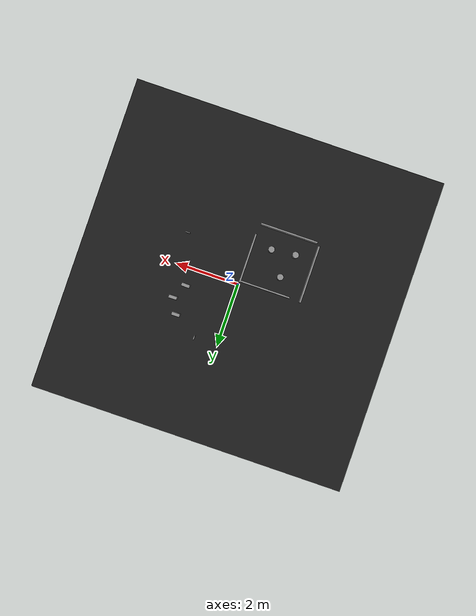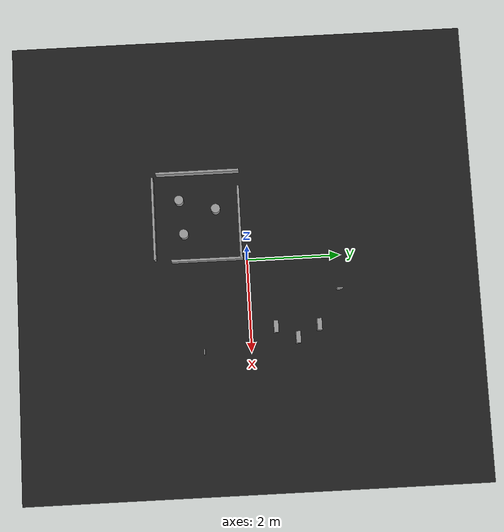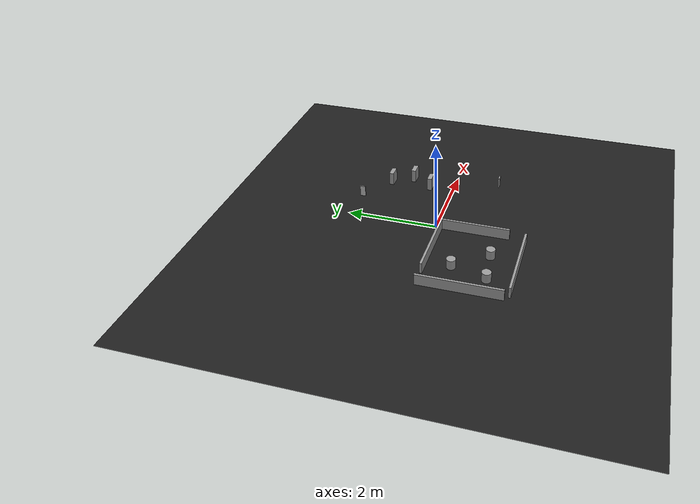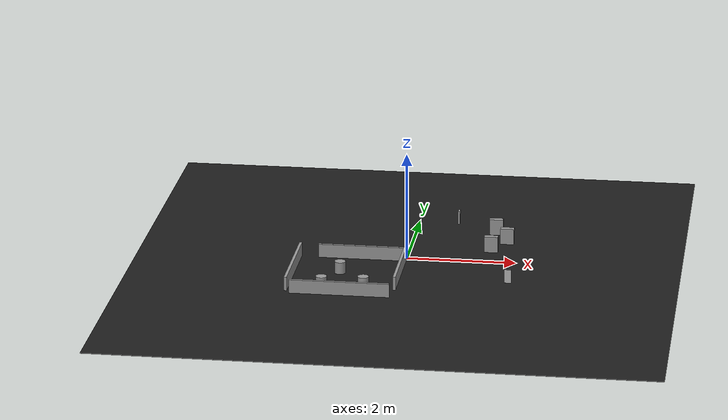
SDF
<sdf version="1.6">
 <world name="default">
  <scene>
   <ambient>0 0 0 1</ambient>
   <shadows>0</shadows>
   <grid>0</grid>
   <background>0.7 0.7 0.7 1</background>
  </scene>
  <include>
   <uri>model://turtlebot3_autorace_2020/traffic_children</uri>
   <pose>0.74 1.95 0.13 0 0 -1.57</pose>
  </include>
  <include>
   <uri>model://turtlebot3_autorace_2020/traffic_ped_crs</uri>
   <pose>1.95 -1.0 0.125 0 -0 0.0</pose>
  </include>
  <light name="sun" type="directional">
   <pose>0 0 10 0 -0 0</pose>
   <diffuse>0.8 0.8 0.8 1</diffuse>
   <specular>0.1 0.1 0.1 1</specular>
   <attenuation>
    <range>1000</range>
    <constant>0.9</constant>
    <linear>0.01</linear>
    <quadratic>0.001</quadratic>
   </attenuation>
   <direction>-0.5 0.5 -1</direction>
  </light>
  <model name="ground2">
   <pose>0 0 -0.1 0 -0 0</pose>
   <static>1</static>
   <link name="ground">
    <collision name="ground_coll"><geometry><box><size>8 8 0.01</size></box></geometry></collision>
    <visual name="ground_vis">
     <geometry><box><size>10 10 0.01</size></box></geometry>
     <material>
      <script><uri>file://media/materials/scripts/gazebo.material</uri><name>Gazebo/FlatBlack</name></script>
     </material>
    </visual>
   </link>
  </model>
  <gravity>0 0 -9.8</gravity>
  <magnetic_field>6e-06 2.3e-05 -4.2e-05</magnetic_field>
  <atmosphere type="adiabatic"/>
  <physics name="default_physics" default="0" type="ode">
   <max_step_size>0.001</max_step_size>
   <real_time_factor>1</real_time_factor>
   <real_time_update_rate>1000</real_time_update_rate>
  </physics>
  <spherical_coordinates>
   <surface_model>EARTH_WGS84</surface_model>
   <latitude_deg>0</latitude_deg>
   <longitude_deg>0</longitude_deg>
   <elevation>0</elevation>
   <heading_deg>0</heading_deg>
  </spherical_coordinates>
  <light name="user_point_light_1" type="point">
   <pose>-1.648146 0.604519 1 0 -0 0</pose>
   <diffuse>0.5 0.5 0.5 1</diffuse>
   <specular>0.1 0.1 0.1 1</specular>
   <attenuation>
    <range>20</range>
    <constant>0.5</constant>
    <linear>0.01</linear>
    <quadratic>0.001</quadratic>
   </attenuation>
   <cast_shadows>0</cast_shadows>
   <direction>0 0 -1</direction>
  </light>
  <light name="user_point_light_2" type="point">
   <pose>1.63854 1.69565 1 0 -0 0</pose>
   <diffuse>0.5 0.5 0.5 1</diffuse>
   <specular>0.1 0.1 0.1 1</specular>
   <attenuation>
    <range>20</range>
    <constant>0.5</constant>
    <linear>0.01</linear>
    <quadratic>0.001</quadratic>
   </attenuation>
   <cast_shadows>0</cast_shadows>
   <direction>0 0 -1</direction>
  </light>
  <light name="user_point_light_3" type="point">
   <pose>0.42  -3.31 1 0 -0 0</pose>
   <diffuse>0.5 0.5 0.5 1</diffuse>
   <specular>0.1 0.1 0.1 1</specular>
   <attenuation>
    <range>20</range>
    <constant>0.5</constant>
    <linear>0.01</linear>
    <quadratic>0.001</quadratic>
   </attenuation>
   <cast_shadows>0</cast_shadows>
   <direction>0 0 -1</direction>
  </light>
  <model name="tunnel_wall">
   <link name="Wall_1">
    <pose>-0.980783 0.049883 0 0 -0 1.5708</pose>
    <visual name="Wall_1_Visual">
     <pose>0 0 0.125 0 -0 0</pose>
     <geometry><box><size>1.8 0.05 0.25</size></box></geometry>
     <material>
      <script><uri>file://media/materials/scripts/gazebo.material</uri><name>Gazebo/Grey</name></script>
      <ambient>1 1 1 1</ambient>
      <diffuse>0.7 0.7 0.7 1</diffuse>
      <specular>0.01 0.01 0.01 1</specular>
      <emissive>0 0 0 1</emissive>
     </material>
    </visual>
    <collision name="Wall_1_Collision">
     <pose>0 0 0.125 0 -0 0</pose>
     <geometry><box><size>1.8 0.05 0.25</size></box></geometry>
     <surface>
      <friction>
       <ode><mu>1</mu><mu2>1</mu2><fdir1>0 0 0</fdir1><slip1>0</slip1><slip2>0</slip2></ode>
       <torsional>
        <coefficient>1</coefficient>
        <patch_radius>0</patch_radius>
        <surface_radius>0</surface_radius>
        <use_patch_radius>1</use_patch_radius>
        <ode><slip>0</slip></ode>
       </torsional>
      </friction>
      <bounce><restitution_coefficient>0</restitution_coefficient><threshold>1e+06</threshold></bounce>
      <contact>
       <collide_without_contact>0</collide_without_contact>
       <collide_without_contact_bitmask>1</collide_without_contact_bitmask>
       <collide_bitmask>1</collide_bitmask>
       <ode>
        <soft_cfm>0</soft_cfm>
        <soft_erp>0.2</soft_erp>
        <kp>1e+13</kp>
        <kd>1</kd>
        <max_vel>0.01</max_vel>
        <min_depth>0</min_depth>
       </ode>
       <bullet>
        <split_impulse>1</split_impulse>
        <split_impulse_penetration_threshold>-0.01</split_impulse_penetration_threshold>
        <soft_cfm>0</soft_cfm>
        <soft_erp>0.2</soft_erp>
        <kp>1e+13</kp>
        <kd>1</kd>
       </bullet>
      </contact>
     </surface>
    </collision>
   </link>
   <link name="Wall_2">
    <pose>0 -0.935438 0 0 -0 0</pose>
    <visual name="Wall_2_Visual">
     <pose>0 0 0.125 0 -0 0</pose>
     <geometry><box><size>1.8 0.05 0.25</size></box></geometry>
     <material>
      <script><uri>file://media/materials/scripts/gazebo.material</uri><name>Gazebo/Grey</name></script>
      <ambient>1 1 1 1</ambient>
      <diffuse>0.7 0.7 0.7 1</diffuse>
      <specular>0.01 0.01 0.01 1</specular>
      <emissive>0 0 0 1</emissive>
     </material>
    </visual>
    <collision name="Wall_2_Collision">
     <pose>0 0 0.125 0 -0 0</pose>
     <geometry><box><size>1.8 0.05 0.25</size></box></geometry>
     <surface>
      <friction>
       <ode><mu>1</mu><mu2>1</mu2><fdir1>0 0 0</fdir1><slip1>0</slip1><slip2>0</slip2></ode>
       <torsional>
        <coefficient>1</coefficient>
        <patch_radius>0</patch_radius>
        <surface_radius>0</surface_radius>
        <use_patch_radius>1</use_patch_radius>
        <ode><slip>0</slip></ode>
       </torsional>
      </friction>
      <bounce><restitution_coefficient>0</restitution_coefficient><threshold>1e+06</threshold></bounce>
      <contact>
       <collide_without_contact>0</collide_without_contact>
       <collide_without_contact_bitmask>1</collide_without_contact_bitmask>
       <collide_bitmask>1</collide_bitmask>
       <ode>
        <soft_cfm>0</soft_cfm>
        <soft_erp>0.2</soft_erp>
        <kp>1e+13</kp>
        <kd>1</kd>
        <max_vel>0.01</max_vel>
        <min_depth>0</min_depth>
       </ode>
       <bullet>
        <split_impulse>1</split_impulse>
        <split_impulse_penetration_threshold>-0.01</split_impulse_penetration_threshold>
        <soft_cfm>0</soft_cfm>
        <soft_erp>0.2</soft_erp>
        <kp>1e+13</kp>
        <kd>1</kd>
       </bullet>
      </contact>
     </surface>
    </collision>
   </link>
   <link name="Wall_3">
    <pose>0.943396 0.183669 0 0 -0 1.5708</pose>
    <inertial>
     <inertia><ixx>nan</ixx><ixy>0</ixy><ixz>0</ixz><iyy>nan</iyy><iyz>0</iyz><izz>nan</izz></inertia>
     <mass>0</mass>
    </inertial>
    <visual name="Wall_3_Visual">
     <pose>0 0 0.125 0 -0 0</pose>
     <geometry><box><size>1.53699 0.05 0.25</size></box></geometry>
     <material>
      <script><uri>file://media/materials/scripts/gazebo.material</uri><name>Gazebo/Grey</name></script>
      <ambient>1 1 1 1</ambient>
      <diffuse>0.7 0.7 0.7 1</diffuse>
      <specular>0.01 0.01 0.01 1</specular>
      <emissive>0 0 0 1</emissive>
     </material>
    </visual>
    <collision name="Wall_3_Collision">
     <pose>0 0 0.125 0 -0 0</pose>
     <geometry><box><size>1.53699 0.05 0.25</size></box></geometry>
     <surface>
      <friction>
       <ode><mu>1</mu><mu2>1</mu2><fdir1>0 0 0</fdir1><slip1>0</slip1><slip2>0</slip2></ode>
       <torsional>
        <coefficient>1</coefficient>
        <patch_radius>0</patch_radius>
        <surface_radius>0</surface_radius>
        <use_patch_radius>1</use_patch_radius>
        <ode><slip>0</slip></ode>
       </torsional>
      </friction>
      <bounce><restitution_coefficient>0</restitution_coefficient><threshold>1e+06</threshold></bounce>
      <contact>
       <collide_without_contact>0</collide_without_contact>
       <collide_without_contact_bitmask>1</collide_without_contact_bitmask>
       <collide_bitmask>1</collide_bitmask>
       <ode>
        <soft_cfm>0</soft_cfm>
        <soft_erp>0.2</soft_erp>
        <kp>1e+13</kp>
        <kd>1</kd>
        <max_vel>0.01</max_vel>
        <min_depth>0</min_depth>
       </ode>
       <bullet>
        <split_impulse>1</split_impulse>
        <split_impulse_penetration_threshold>-0.01</split_impulse_penetration_threshold>
        <soft_cfm>0</soft_cfm>
        <soft_erp>0.2</soft_erp>
        <kp>1e+13</kp>
        <kd>1</kd>
       </bullet>
      </contact>
     </surface>
    </collision>
   </link>
   <link name="Wall_4">
    <pose>0.15 0.915 0 0 -0 3.14159</pose>
    <visual name="Wall_4_Visual">
     <pose>0 0 0.125 0 -0 0</pose>
     <geometry><box><size>1.58 0.05 0.25</size></box></geometry>
     <material>
      <script><uri>file://media/materials/scripts/gazebo.material</uri><name>Gazebo/Grey</name></script>
      <ambient>1 1 1 1</ambient>
      <diffuse>0.7 0.7 0.7 1</diffuse>
      <specular>0.01 0.01 0.01 1</specular>
      <emissive>0 0 0 1</emissive>
     </material>
    </visual>
    <collision name="Wall_4_Collision">
     <pose>0 0 0.125 0 -0 0</pose>
     <geometry><box><size>1.58 0.05 0.25</size></box></geometry>
     <surface>
      <friction>
       <ode><mu>1</mu><mu2>1</mu2><fdir1>0 0 0</fdir1><slip1>0</slip1><slip2>0</slip2></ode>
       <torsional>
        <coefficient>1</coefficient>
        <patch_radius>0</patch_radius>
        <surface_radius>0</surface_radius>
        <use_patch_radius>1</use_patch_radius>
        <ode><slip>0</slip></ode>
       </torsional>
      </friction>
      <bounce><restitution_coefficient>0</restitution_coefficient><threshold>1e+06</threshold></bounce>
      <contact>
       <collide_without_contact>0</collide_without_contact>
       <collide_without_contact_bitmask>1</collide_without_contact_bitmask>
       <collide_bitmask>1</collide_bitmask>
       <ode>
        <soft_cfm>0</soft_cfm>
        <soft_erp>0.2</soft_erp>
        <kp>1e+13</kp>
        <kd>1</kd>
        <max_vel>0.01</max_vel>
        <min_depth>0</min_depth>
       </ode>
       <bullet>
        <split_impulse>1</split_impulse>
        <split_impulse_penetration_threshold>-0.01</split_impulse_penetration_threshold>
        <soft_cfm>0</soft_cfm>
        <soft_erp>0.2</soft_erp>
        <kp>1e+13</kp>
        <kd>1</kd>
       </bullet>
      </contact>
     </surface>
    </collision>
   </link>
   <static>1</static>
   <pose>-0.964699 -1.03574 0 0 -0 0</pose>
  </model>
  <model name="tunnel_obstacle">
   <link name="obstacle_1">
    <pose>0.42322 -0.212034 0.0 0 -0 0</pose>
    <inertial>
     <mass>0.0416663</mass>
     <inertia>
      <ixx>0.00098188</ixx>
      <ixy>0</ixy>
      <ixz>0</ixz>
      <iyy>0.00098188</iyy>
      <iyz>0</iyz>
      <izz>0.00046751</izz>
     </inertia>
    </inertial>
    <visual name="visual">
     <geometry><cylinder><radius>0.1</radius><length>0.25</length></cylinder></geometry>
     <material>
      <lighting>1</lighting>
      <script><uri>file://media/materials/scripts/gazebo.material</uri><name>Gazebo/Grey</name></script>
      <ambient>0.3 0.3 0.3 1</ambient>
      <diffuse>0.7 0.7 0.7 1</diffuse>
      <specular>0.01 0.01 0.01 1</specular>
      <emissive>0 0 0 1</emissive>
      <shader type="pixel"><normal_map>__default__</normal_map></shader>
     </material>
    </visual>
    <collision name="collision">
     <geometry><cylinder><radius>0.1</radius><length>0.46418</length></cylinder></geometry>
     <surface>
      <friction>
       <ode><mu>1</mu><mu2>1</mu2><fdir1>0 0 0</fdir1><slip1>0</slip1><slip2>0</slip2></ode>
       <torsional>
        <coefficient>1</coefficient>
        <patch_radius>0</patch_radius>
        <surface_radius>0</surface_radius>
        <use_patch_radius>1</use_patch_radius>
        <ode><slip>0</slip></ode>
       </torsional>
      </friction>
      <bounce><restitution_coefficient>0</restitution_coefficient><threshold>1e+06</threshold></bounce>
      <contact>
       <collide_without_contact>0</collide_without_contact>
       <collide_without_contact_bitmask>1</collide_without_contact_bitmask>
       <collide_bitmask>1</collide_bitmask>
       <ode>
        <soft_cfm>0</soft_cfm>
        <soft_erp>0.2</soft_erp>
        <kp>1e+13</kp>
        <kd>1</kd>
        <max_vel>0.01</max_vel>
        <min_depth>0</min_depth>
       </ode>
       <bullet>
        <split_impulse>1</split_impulse>
        <split_impulse_penetration_threshold>-0.01</split_impulse_penetration_threshold>
        <soft_cfm>0</soft_cfm>
        <soft_erp>0.2</soft_erp>
        <kp>1e+13</kp>
        <kd>1</kd>
       </bullet>
      </contact>
     </surface>
    </collision>
   </link>
   <link name="obstacle_2">
    <pose>-0.323729 -0.287563 0.0 0 -0 0</pose>
    <inertial>
     <mass>0.0416663</mass>
     <inertia>
      <ixx>0.00098188</ixx>
      <ixy>0</ixy>
      <ixz>0</ixz>
      <iyy>0.00098188</iyy>
      <iyz>0</iyz>
      <izz>0.00046751</izz>
     </inertia>
    </inertial>
    <visual name="visual">
     <geometry><cylinder><radius>0.1</radius><length>0.25</length></cylinder></geometry>
     <material>
      <lighting>1</lighting>
      <script><uri>file://media/materials/scripts/gazebo.material</uri><name>Gazebo/Grey</name></script>
      <ambient>0.3 0.3 0.3 1</ambient>
      <diffuse>0.7 0.7 0.7 1</diffuse>
      <specular>0.01 0.01 0.01 1</specular>
      <emissive>0 0 0 1</emissive>
      <shader type="pixel"><normal_map>__default__</normal_map></shader>
     </material>
    </visual>
    <collision name="collision">
     <geometry><cylinder><radius>0.1</radius><length>0.46418</length></cylinder></geometry>
     <surface>
      <friction>
       <ode><mu>1</mu><mu2>1</mu2><fdir1>0 0 0</fdir1><slip1>0</slip1><slip2>0</slip2></ode>
       <torsional>
        <coefficient>1</coefficient>
        <patch_radius>0</patch_radius>
        <surface_radius>0</surface_radius>
        <use_patch_radius>1</use_patch_radius>
        <ode><slip>0</slip></ode>
       </torsional>
      </friction>
      <bounce><restitution_coefficient>0</restitution_coefficient><threshold>1e+06</threshold></bounce>
      <contact>
       <collide_without_contact>0</collide_without_contact>
       <collide_without_contact_bitmask>1</collide_without_contact_bitmask>
       <collide_bitmask>1</collide_bitmask>
       <ode>
        <soft_cfm>0</soft_cfm>
        <soft_erp>0.2</soft_erp>
        <kp>1e+13</kp>
        <kd>1</kd>
        <max_vel>0.01</max_vel>
        <min_depth>0</min_depth>
       </ode>
       <bullet>
        <split_impulse>1</split_impulse>
        <split_impulse_penetration_threshold>-0.01</split_impulse_penetration_threshold>
        <soft_cfm>0</soft_cfm>
        <soft_erp>0.2</soft_erp>
        <kp>1e+13</kp>
        <kd>1</kd>
       </bullet>
      </contact>
     </surface>
    </collision>
   </link>
   <link name="obstacle_3">
    <pose>-0.099492 0.499594 0.0 0 -0 0</pose>
    <inertial>
     <mass>0.0416663</mass>
     <inertia>
      <ixx>0.00098188</ixx>
      <ixy>0</ixy>
      <ixz>0</ixz>
      <iyy>0.00098188</iyy>
      <iyz>0</iyz>
      <izz>0.00046751</izz>
     </inertia>
    </inertial>
    <visual name="visual">
     <geometry><cylinder><radius>0.1</radius><length>0.25</length></cylinder></geometry>
     <material>
      <lighting>1</lighting>
      <script><uri>file://media/materials/scripts/gazebo.material</uri><name>Gazebo/Grey</name></script>
      <ambient>0.3 0.3 0.3 1</ambient>
      <diffuse>0.7 0.7 0.7 1</diffuse>
      <specular>0.01 0.01 0.01 1</specular>
      <emissive>0 0 0 1</emissive>
      <shader type="pixel"><normal_map>__default__</normal_map></shader>
     </material>
    </visual>
    <collision name="collision">
     <geometry><cylinder><radius>0.1</radius><length>0.46418</length></cylinder></geometry>
     <surface>
      <friction>
       <ode><mu>1</mu><mu2>1</mu2><fdir1>0 0 0</fdir1><slip1>0</slip1><slip2>0</slip2></ode>
       <torsional>
        <coefficient>1</coefficient>
        <patch_radius>0</patch_radius>
        <surface_radius>0</surface_radius>
        <use_patch_radius>1</use_patch_radius>
        <ode><slip>0</slip></ode>
       </torsional>
      </friction>
      <bounce><restitution_coefficient>0</restitution_coefficient><threshold>1e+06</threshold></bounce>
      <contact>
       <collide_without_contact>0</collide_without_contact>
       <collide_without_contact_bitmask>1</collide_without_contact_bitmask>
       <collide_bitmask>1</collide_bitmask>
       <ode>
        <soft_cfm>0</soft_cfm>
        <soft_erp>0.2</soft_erp>
        <kp>1e+13</kp>
        <kd>1</kd>
        <max_vel>0.01</max_vel>
        <min_depth>0</min_depth>
       </ode>
       <bullet>
        <split_impulse>1</split_impulse>
        <split_impulse_penetration_threshold>-0.01</split_impulse_penetration_threshold>
        <soft_cfm>0</soft_cfm>
        <soft_erp>0.2</soft_erp>
        <kp>1e+13</kp>
        <kd>1</kd>
       </bullet>
      </contact>
     </surface>
    </collision>
   </link>
   <static>1</static>
   <pose>-1.04145 -1.12671 0 0 -0 0</pose>
  </model>
  <model name="barrier_1">
   <link name="link">
    <inertial>
     <mass>1</mass>
     <inertia>
      <ixx>0.166667</ixx>
      <ixy>0</ixy>
      <ixz>0</ixz>
      <iyy>0.166667</iyy>
      <iyz>0</iyz>
      <izz>0.166667</izz>
     </inertia>
    </inertial>
    <visual name="visual">
     <geometry><box><size>0.25 0.1 0.3</size></box></geometry>
     <material>
      <script><name>Gazebo/Grey</name><uri>file://media/materials/scripts/gazebo.material</uri></script>
      <shader type="pixel"><normal_map>__default__</normal_map></shader>
      <ambient>0.3 0.3 0.3 1</ambient>
      <diffuse>0.7 0.7 0.7 1</diffuse>
      <specular>0.01 0.01 0.01 1</specular>
      <emissive>0 0 0 1</emissive>
     </material>
    </visual>
    <collision name="collision">
     <geometry><box><size>0.25 0.1 0.3</size></box></geometry>
     <surface>
      <friction>
       <ode><mu>1</mu><mu2>1</mu2><fdir1>0 0 0</fdir1><slip1>0</slip1><slip2>0</slip2></ode>
       <torsional>
        <coefficient>1</coefficient>
        <patch_radius>0</patch_radius>
        <surface_radius>0</surface_radius>
        <use_patch_radius>1</use_patch_radius>
        <ode><slip>0</slip></ode>
       </torsional>
      </friction>
      <bounce><restitution_coefficient>0</restitution_coefficient><threshold>1e+06</threshold></bounce>
      <contact>
       <collide_without_contact>0</collide_without_contact>
       <collide_without_contact_bitmask>1</collide_without_contact_bitmask>
       <collide_bitmask>1</collide_bitmask>
       <ode>
        <soft_cfm>0</soft_cfm>
        <soft_erp>0.2</soft_erp>
        <kp>1e+13</kp>
        <kd>1</kd>
        <max_vel>0.01</max_vel>
        <min_depth>0</min_depth>
       </ode>
       <bullet>
        <split_impulse>1</split_impulse>
        <split_impulse_penetration_threshold>-0.01</split_impulse_penetration_threshold>
        <soft_cfm>0</soft_cfm>
        <soft_erp>0.2</soft_erp>
        <kp>1e+13</kp>
        <kd>1</kd>
       </bullet>
      </contact>
     </surface>
    </collision>
   </link>
   <static>0</static>
   <pose>1.49 0.54 0.15 0 -0 0</pose>
  </model>
  <model name="barrier_2">
   <link name="link">
    <inertial>
     <mass>1</mass>
     <inertia>
      <ixx>0.166667</ixx>
      <ixy>0</ixy>
      <ixz>0</ixz>
      <iyy>0.166667</iyy>
      <iyz>0</iyz>
      <izz>0.166667</izz>
     </inertia>
    </inertial>
    <visual name="visual">
     <geometry><box><size>0.25 0.1 0.3</size></box></geometry>
     <material>
      <script><name>Gazebo/Grey</name><uri>file://media/materials/scripts/gazebo.material</uri></script>
      <shader type="pixel"><normal_map>__default__</normal_map></shader>
      <ambient>0.3 0.3 0.3 1</ambient>
      <diffuse>0.7 0.7 0.7 1</diffuse>
      <specular>0.01 0.01 0.01 1</specular>
      <emissive>0 0 0 1</emissive>
     </material>
    </visual>
    <collision name="collision">
     <geometry><box><size>0.25 0.1 0.3</size></box></geometry>
     <surface>
      <friction>
       <ode><mu>1</mu><mu2>1</mu2><fdir1>0 0 0</fdir1><slip1>0</slip1><slip2>0</slip2></ode>
       <torsional>
        <coefficient>1</coefficient>
        <patch_radius>0</patch_radius>
        <surface_radius>0</surface_radius>
        <use_patch_radius>1</use_patch_radius>
        <ode><slip>0</slip></ode>
       </torsional>
      </friction>
      <bounce><restitution_coefficient>0</restitution_coefficient><threshold>1e+06</threshold></bounce>
      <contact>
       <collide_without_contact>0</collide_without_contact>
       <collide_without_contact_bitmask>1</collide_without_contact_bitmask>
       <collide_bitmask>1</collide_bitmask>
       <ode>
        <soft_cfm>0</soft_cfm>
        <soft_erp>0.2</soft_erp>
        <kp>1e+13</kp>
        <kd>1</kd>
        <max_vel>0.01</max_vel>
        <min_depth>0</min_depth>
       </ode>
       <bullet>
        <split_impulse>1</split_impulse>
        <split_impulse_penetration_threshold>-0.01</split_impulse_penetration_threshold>
        <soft_cfm>0</soft_cfm>
        <soft_erp>0.2</soft_erp>
        <kp>1e+13</kp>
        <kd>1</kd>
       </bullet>
      </contact>
     </surface>
    </collision>
   </link>
   <static>0</static>
   <pose>1.74 1 0.15 0 -0 0</pose>
  </model>
  <model name="barrier_3">
   <link name="link">
    <inertial>
     <mass>1</mass>
     <inertia>
      <ixx>0.166667</ixx>
      <ixy>0</ixy>
      <ixz>0</ixz>
      <iyy>0.166667</iyy>
      <iyz>0</iyz>
      <izz>0.166667</izz>
     </inertia>
    </inertial>
    <visual name="visual">
     <geometry><box><size>0.25 0.1 0.3</size></box></geometry>
     <material>
      <script><name>Gazebo/Grey</name><uri>file://media/materials/scripts/gazebo.material</uri></script>
      <shader type="pixel"><normal_map>__default__</normal_map></shader>
      <ambient>0.3 0.3 0.3 1</ambient>
      <diffuse>0.7 0.7 0.7 1</diffuse>
      <specular>0.01 0.01 0.01 1</specular>
      <emissive>0 0 0 1</emissive>
     </material>
    </visual>
    <collision name="collision">
     <geometry><box><size>0.25 0.1 0.3</size></box></geometry>
     <surface>
      <friction>
       <ode><mu>1</mu><mu2>1</mu2><fdir1>0 0 0</fdir1><slip1>0</slip1><slip2>0</slip2></ode>
       <torsional>
        <coefficient>1</coefficient>
        <patch_radius>0</patch_radius>
        <surface_radius>0</surface_radius>
        <use_patch_radius>1</use_patch_radius>
        <ode><slip>0</slip></ode>
       </torsional>
      </friction>
      <bounce><restitution_coefficient>0</restitution_coefficient><threshold>1e+06</threshold></bounce>
      <contact>
       <collide_without_contact>0</collide_without_contact>
       <collide_without_contact_bitmask>1</collide_without_contact_bitmask>
       <collide_bitmask>1</collide_bitmask>
       <ode>
        <soft_cfm>0</soft_cfm>
        <soft_erp>0.2</soft_erp>
        <kp>1e+13</kp>
        <kd>1</kd>
        <max_vel>0.01</max_vel>
        <min_depth>0</min_depth>
       </ode>
       <bullet>
        <split_impulse>1</split_impulse>
        <split_impulse_penetration_threshold>-0.01</split_impulse_penetration_threshold>
        <soft_cfm>0</soft_cfm>
        <soft_erp>0.2</soft_erp>
        <kp>1e+13</kp>
        <kd>1</kd>
       </bullet>
      </contact>
     </surface>
    </collision>
   </link>
   <static>0</static>
   <pose>1.49 1.464 0.15 0 -0 0</pose>
  </model>
 </world>
</sdf>

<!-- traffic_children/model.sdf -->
<sdf version="1.6">
  <model name="traffic_children">
    <static>true</static>
    <link name="box">
      <pose>0 0 0 0 0 0</pose>
      <collision name="collision">
        <geometry>
          <box>
            <size>0.12 0.025 0.25</size>
          </box>
        </geometry>
      </collision>
      <visual name="visual">
        <geometry>
          <box>
            <size>0.12 0.025 0.25</size>
          </box>
        </geometry>
        <material>
          <script>
            <uri>model://turtlebot3_autorace_2020/traffic_children/materials/scripts</uri>
            <uri>model://turtlebot3_autorace_2020/traffic_children/materials/textures</uri>
            <name>traffic_children</name>
          </script>
        </material>
      </visual>
    </link>
  </model>
</sdf>

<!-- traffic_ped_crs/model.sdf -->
<sdf version="1.6">
  <model name="traffic_ped_crs">
    <static>true</static>
    <link name="box">
      <pose>0 0 0 0 0 0</pose>
      <collision name="collision">
        <geometry>
          <box>
            <size>0.12 0.025 0.25</size>
          </box>
        </geometry>
      </collision>
      <visual name="visual">
        <geometry>
          <box>
            <size>0.12 0.025 0.25</size>
          </box>
        </geometry>
        <material>
          <script>
            <uri>model://robotics_final_project/traffic_ped_crs/materials/scripts</uri>
            <uri>model://robotics_final_project/traffic_ped_crs/materials/textures</uri>
            <name>traffic_ped_crs</name>
          </script>
        </material>
      </visual>
    </link>
  </model>
</sdf>
